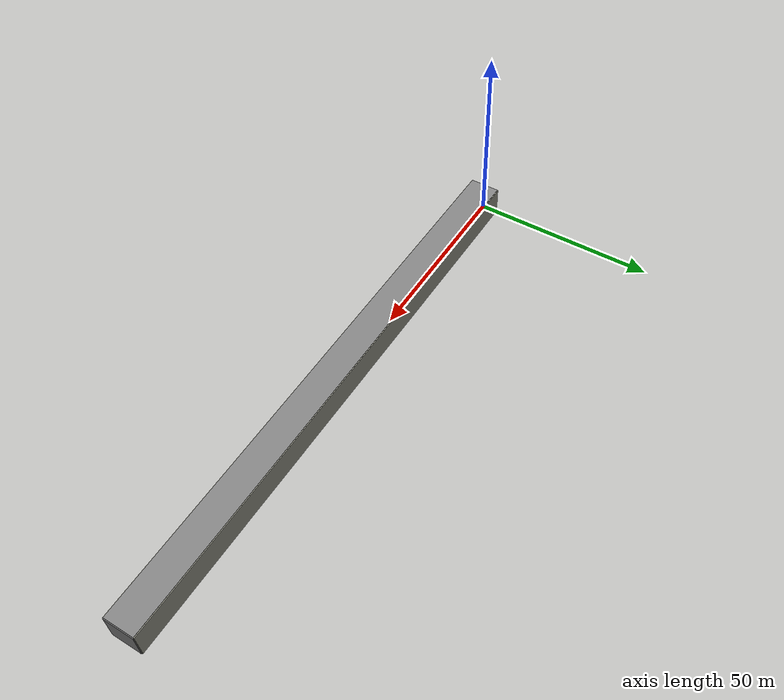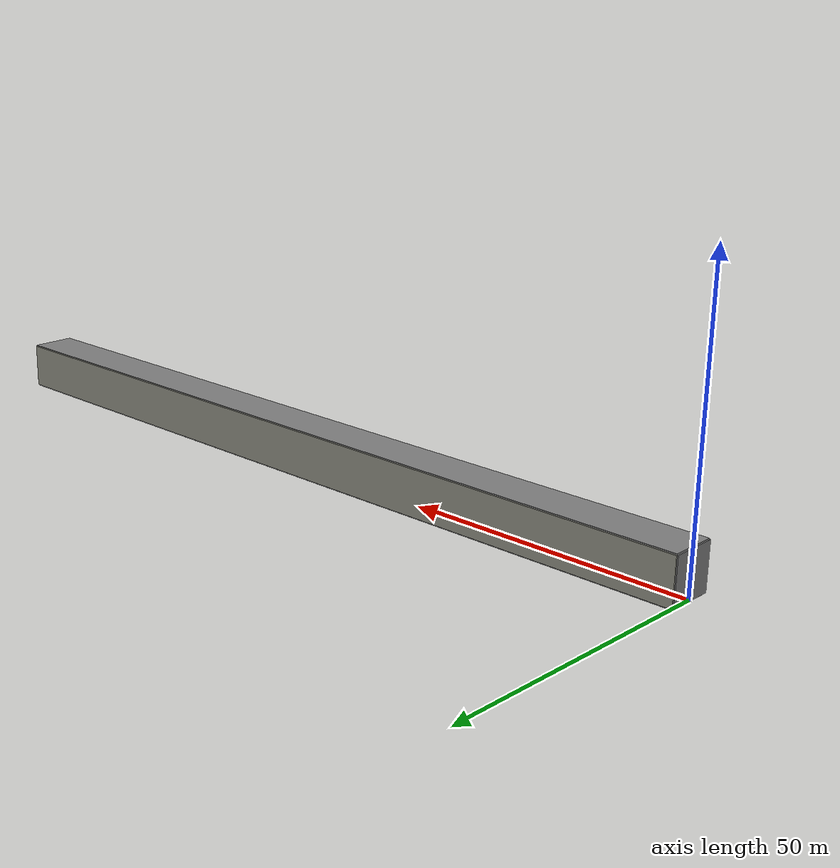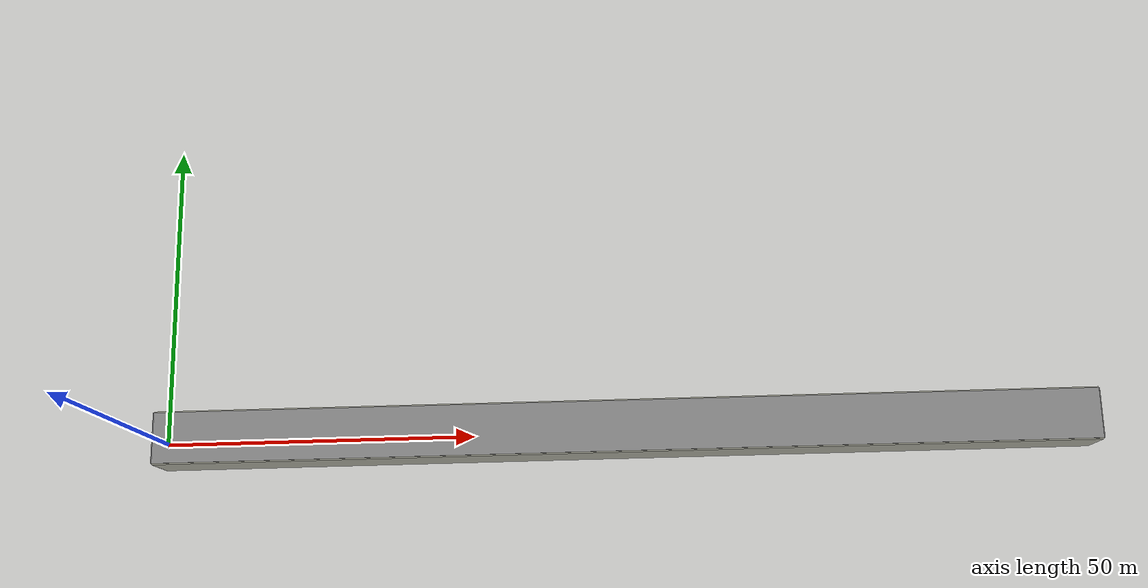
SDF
<?xml version="1.0" ?>
<sdf version="1.8">
  <world name="corridor">

    <physics name="1ms" type="ignored">
      <max_step_size>0.001</max_step_size>
      <real_time_factor>1.0</real_time_factor>
    </physics>

    <plugin filename="gz-sim-physics-system"
            name="gz::sim::systems::Physics"/>
    <plugin filename="gz-sim-user-commands-system"
            name="gz::sim::systems::UserCommands"/>
    <plugin filename="gz-sim-scene-broadcaster-system"
            name="gz::sim::systems::SceneBroadcaster"/>
    <plugin filename="gz-sim-imu-system"
                name="gz::sim::systems::Imu"/>
    <plugin filename="gz-sim-sensors-system"
            name="gz::sim::systems::Sensors">
      <render_engine>ogre2</render_engine>
    </plugin>

    <light type="directional" name="sun">
      <cast_shadows>false</cast_shadows>
      <pose>0 0 10 0 0 0</pose>
      <diffuse>0.8 0.8 0.8 1</diffuse>
      <specular>0.2 0.2 0.2 1</specular>
      <direction>-0.5 0.1 -0.9</direction>
    </light>

    <model name="corridor_structure">
      <static>true</static>
    <link name="floor">
      <pose>75.0 0 -0.1 0 0 0</pose>
      <collision name="floor_collision">
        <geometry>
          <box><size>150.0 8.0 0.2</size></box>
        </geometry>
      </collision>
      <visual name="floor_visual">
        <geometry>
          <box><size>150.0 8.0 0.2</size></box>
        </geometry>
        <material>
          <ambient>0.4 0.4 0.4 1</ambient>
          <diffuse>0.4 0.4 0.4 1</diffuse>
        </material>
      </visual>
    </link>
    <link name="wall_left">
      <pose>75.0 4.1 4.0 0 0 0</pose>
      <collision name="wall_left_collision">
        <geometry>
          <box><size>150.0 0.2 8.0</size></box>
        </geometry>
      </collision>
      <visual name="wall_left_visual">
        <geometry>
          <box><size>150.0 0.2 8.0</size></box>
        </geometry>
        <material>
          <ambient>0.6 0.6 0.55 1</ambient>
          <diffuse>0.6 0.6 0.55 1</diffuse>
        </material>
      </visual>
    </link>
    <link name="wall_right">
      <pose>75.0 -4.1 4.0 0 0 0</pose>
      <collision name="wall_right_collision">
        <geometry>
          <box><size>150.0 0.2 8.0</size></box>
        </geometry>
      </collision>
      <visual name="wall_right_visual">
        <geometry>
          <box><size>150.0 0.2 8.0</size></box>
        </geometry>
        <material>
          <ambient>0.6 0.6 0.55 1</ambient>
          <diffuse>0.6 0.6 0.55 1</diffuse>
        </material>
      </visual>
    </link>
    <link name="ceiling">
      <pose>75.0 0 8.1 0 0 0</pose>
      <collision name="ceiling_collision">
        <geometry>
          <box><size>150.0 8.0 0.2</size></box>
        </geometry>
      </collision>
      <visual name="ceiling_visual">
        <geometry>
          <box><size>150.0 8.0 0.2</size></box>
        </geometry>
        <material>
          <ambient>0.5 0.5 0.5 1</ambient>
          <diffuse>0.5 0.5 0.5 1</diffuse>
        </material>
      </visual>
    </link>
    <link name="end_near">
      <pose>-0.1 0 4.0 0 0 0</pose>
      <collision name="end_near_collision">
        <geometry>
          <box><size>0.2 8.0 8.0</size></box>
        </geometry>
      </collision>
      <visual name="end_near_visual">
        <geometry>
          <box><size>0.2 8.0 8.0</size></box>
        </geometry>
        <material>
          <ambient>0.45 0.45 0.45 1</ambient>
          <diffuse>0.45 0.45 0.45 1</diffuse>
        </material>
      </visual>
    </link>
    <link name="end_far">
      <pose>150.1 0 4.0 0 0 0</pose>
      <collision name="end_far_collision">
        <geometry>
          <box><size>0.2 8.0 8.0</size></box>
        </geometry>
      </collision>
      <visual name="end_far_visual">
        <geometry>
          <box><size>0.2 8.0 8.0</size></box>
        </geometry>
        <material>
          <ambient>0.45 0.45 0.45 1</ambient>
          <diffuse>0.45 0.45 0.45 1</diffuse>
        </material>
      </visual>
    </link>
    </model>

  </world>
</sdf>
